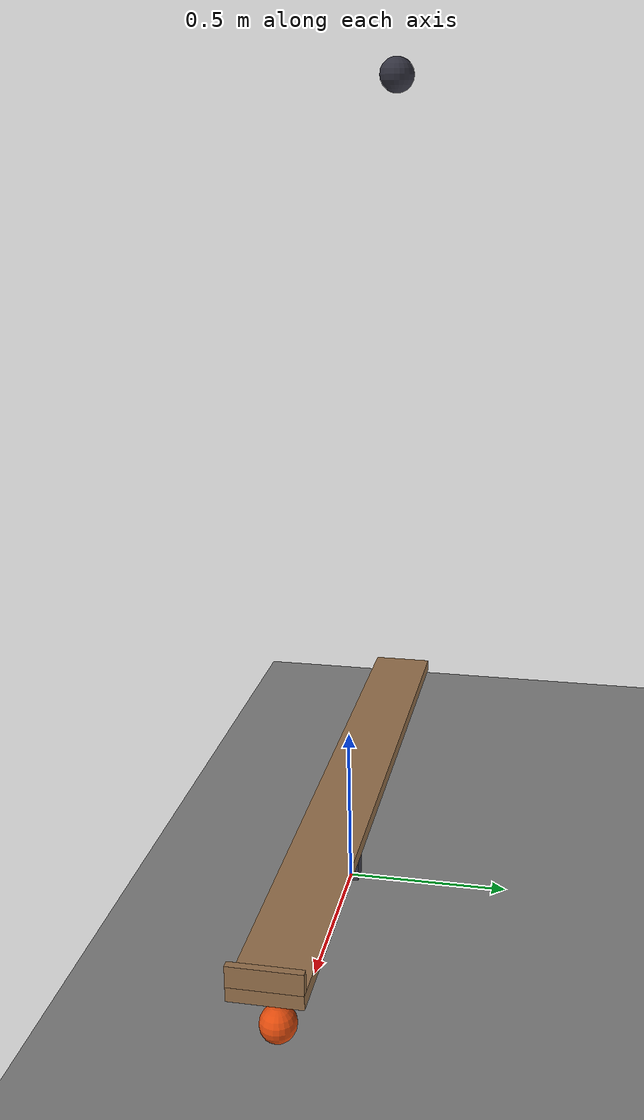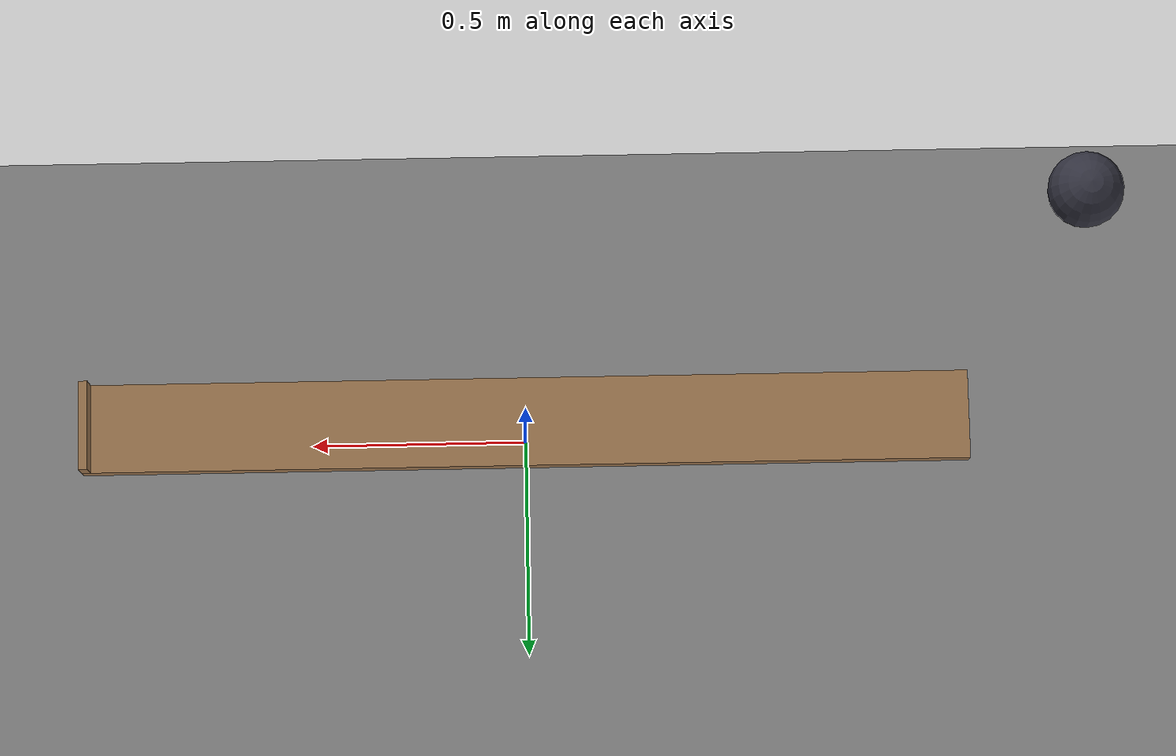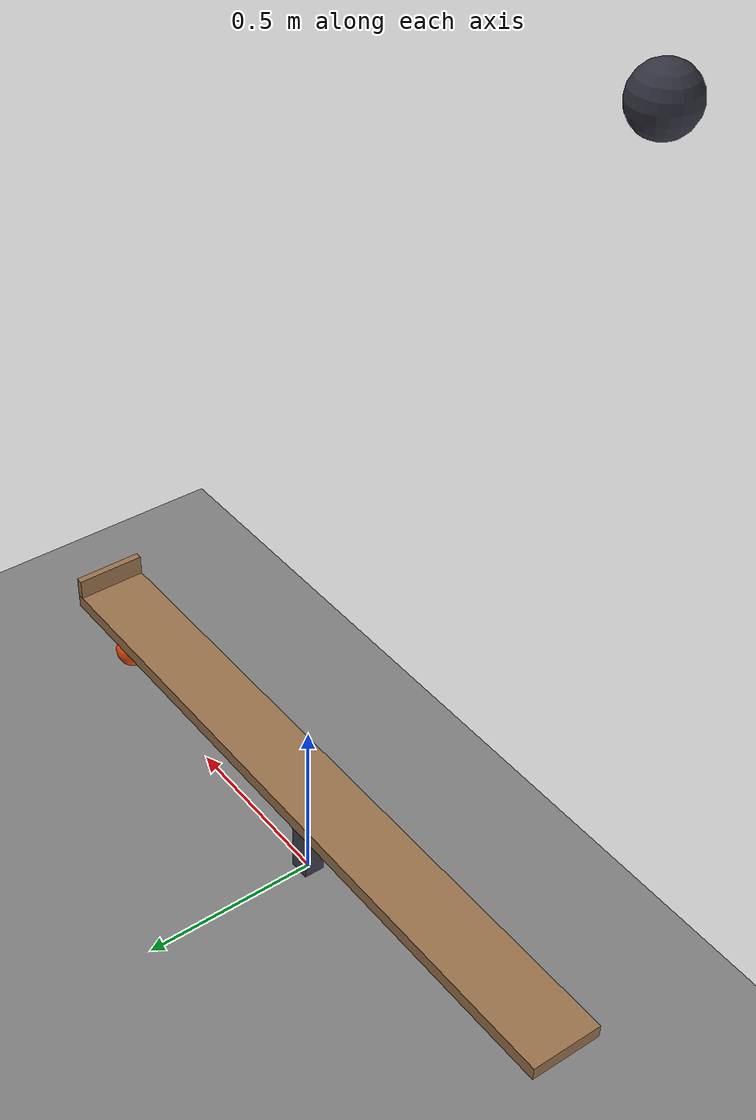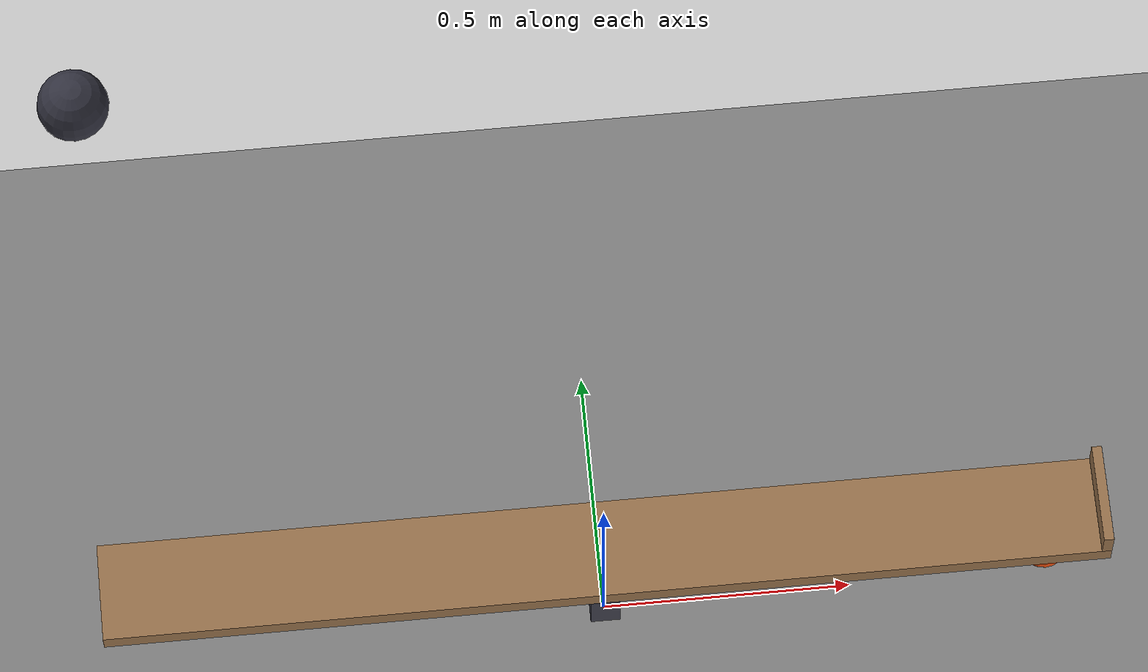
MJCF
<mujoco model="seesaw_throw">
  <compiler angle="radian"/>
  <option timestep="0.002"/>
  <worldbody>
    <geom name="floor" type="plane" size="8 8 0.1" friction="0.8 0.005 0.002"/>
    <body name="fulcrum">
      <geom name="fulcrum" type="box" pos="0 0 0.13" size="0.03 0.03 0.13" rgba="0.25 0.25 0.3 1"/>
    </body>
    <body name="seesaw" pos="0 0 0.3">
      <joint name="seesaw_hinge" type="hinge" pos="0 0 0" axis="0 1 0" limited="true" range="-0.261799 0.261799"/>
      <geom name="seesaw" type="box" pos="0 0 0" size="1 0.1 0.02" mass="0.5" rgba="0.6 0.45 0.3 1"/>
      <geom name="stop" type="box" pos="0.99 0 0.05" size="0.01 0.1 0.03" mass="0.02" rgba="0.6 0.45 0.3 1"/>
    </body>
    <body name="ball" pos="0.887 0 0.14">
      <freejoint/>
      <geom name="ball" type="sphere" pos="0 0 0" size="0.05" mass="0.1" condim="6" friction="0.8 0.01 0.004" rgba="0.9 0.3 0.05 1"/>
    </body>
    <body name="weight" pos="-0.88 0 2.5">
      <freejoint/>
      <geom name="weight" type="sphere" pos="0 0 0" size="0.06" mass="1" friction="0.8 0.005 0.0001" solref="0.01 1" rgba="0.2 0.2 0.25 1"/>
    </body>
  </worldbody>
  <keyframe>
    <key name="start" qpos="0.261799 0.887 0 0.14 1 0 0 0 -0.88 0 2.5 1 0 0 0" qvel="0 0 0 0 0 0 0 0 0 0 0 0 0"/>
  </keyframe>
</mujoco>
